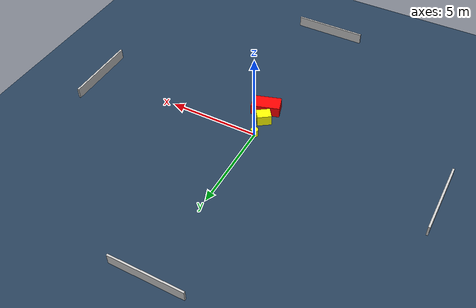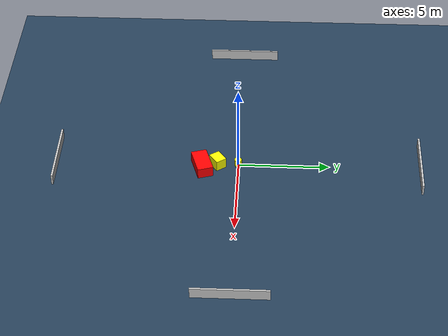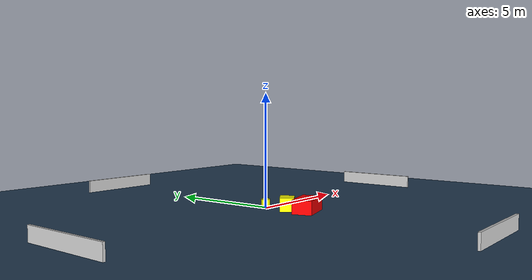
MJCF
<?xml version="1.0" ?>
<mujoco model="generated_environment">
  <option timestep="0.01" integrator="RK4" cone="elliptic"/>
  <default>
    <geom density="1"/>
  </default>
  <asset>
    <texture builtin="gradient" height="3072" name="skybox" rgb1="0.3 0.5 0.7" rgb2="0 0 0" type="skybox" width="512"/>
    <texture builtin="checker" height="300" name="groundplane" rgb1="0.2 0.3 0.4" rgb2="0.1 0.2 0.3" type="2d" width="300"/>
    <material name="groundplane" reflectance="0.2" texrepeat="5 5" texture="groundplane"/>
  </asset>
  <worldbody>
    <light dir="0 0 -1" directional="true" pos="0 0 1.5"/>
    <geom condim="3" friction="0.5 0.005 0.001" material="groundplane" name="floor" pos="0 0 0" size="0 0 0.05" type="plane"/>
    <body name="walls">
      <geom name="wall_1" condim="4" pos="-10.0 0.0 0.3" rgba="0.800000011920929 0.800000011920929 0.800000011920929 1.0" size="0.05 2.0 0.3" type="box"/>
      <geom name="wall_2" condim="4" pos="10.0 0.0 0.3" rgba="0.800000011920929 0.800000011920929 0.800000011920929 1.0" size="0.05 2.0 0.3" type="box"/>
      <geom name="wall_3" condim="4" pos="0.0 -10.0 0.3" rgba="0.800000011920929 0.800000011920929 0.800000011920929 1.0" size="2.0 0.05 0.3" type="box"/>
      <geom name="wall_4" condim="4" pos="0.0 10.0 0.3" rgba="0.800000011920929 0.800000011920929 0.800000011920929 1.0" size="2.0 0.05 0.3" type="box"/>
    </body>
    <body name="robot">
      <joint name="joint_x" type="slide" pos="0 0 0" axis="1 0 0"/>
      <joint name="joint_y" type="slide" pos="0 0 0" axis="0 1 0"/>
      <geom name="robot" type="cylinder" pos="0.0 0.0 0.2" size="0.2 0.2 0.0" mass="5.0" friction="1.0 0.005 0.0001" condim="4" rgba="1.0 1.0 0.0 1.0"/>
    </body>
    <body name="obstacle_1_movable">
      <geom name="obstacle_1_movable" condim="4" pos="0.04644265317664017 -1.126803295636459 0.3" euler="0 0 304.9852277444678" friction="0.0 0.005 0.001" rgba="1.0 1.0 0.0 1.0" size="0.30941989020713423 0.38407083196166397 0.3" type="box" mass="0.1"/>
      <joint type="free"/>
    </body>
    <body name="obstacle_2_static">
      <geom name="obstacle_2_static" condim="4" pos="0.317531989224131 -1.9744964254848079 0.3" euler="0 0 107.51757455400262" friction="0.0 0.005 0.001" rgba="1.0 0.0 0.0 1.0" size="0.43122125804721634 0.7815462758203899 0.3" type="box"/>
    </body>
  </worldbody>
  <actuator>
    <motor name="actuator_x" joint="joint_x" gear="1" ctrlrange="-1 1"/>
    <motor name="actuator_y" joint="joint_y" gear="1" ctrlrange="-1 1"/>
  </actuator>
</mujoco>
